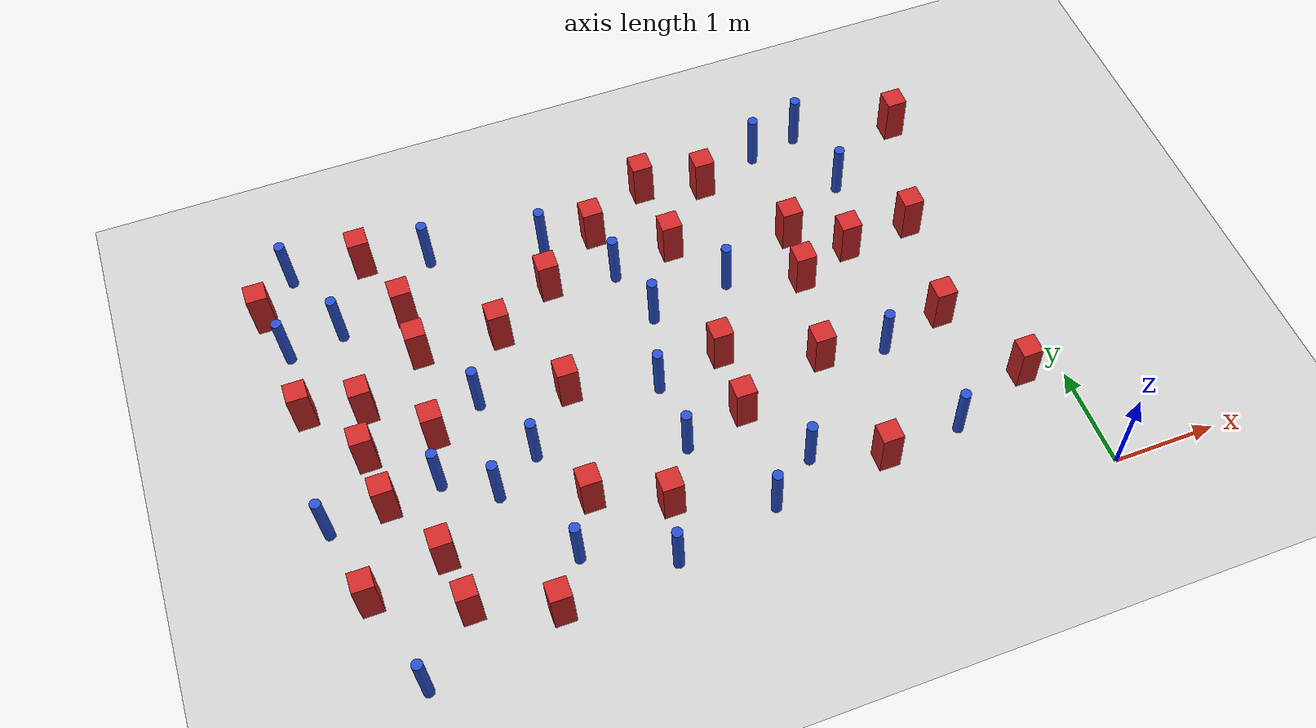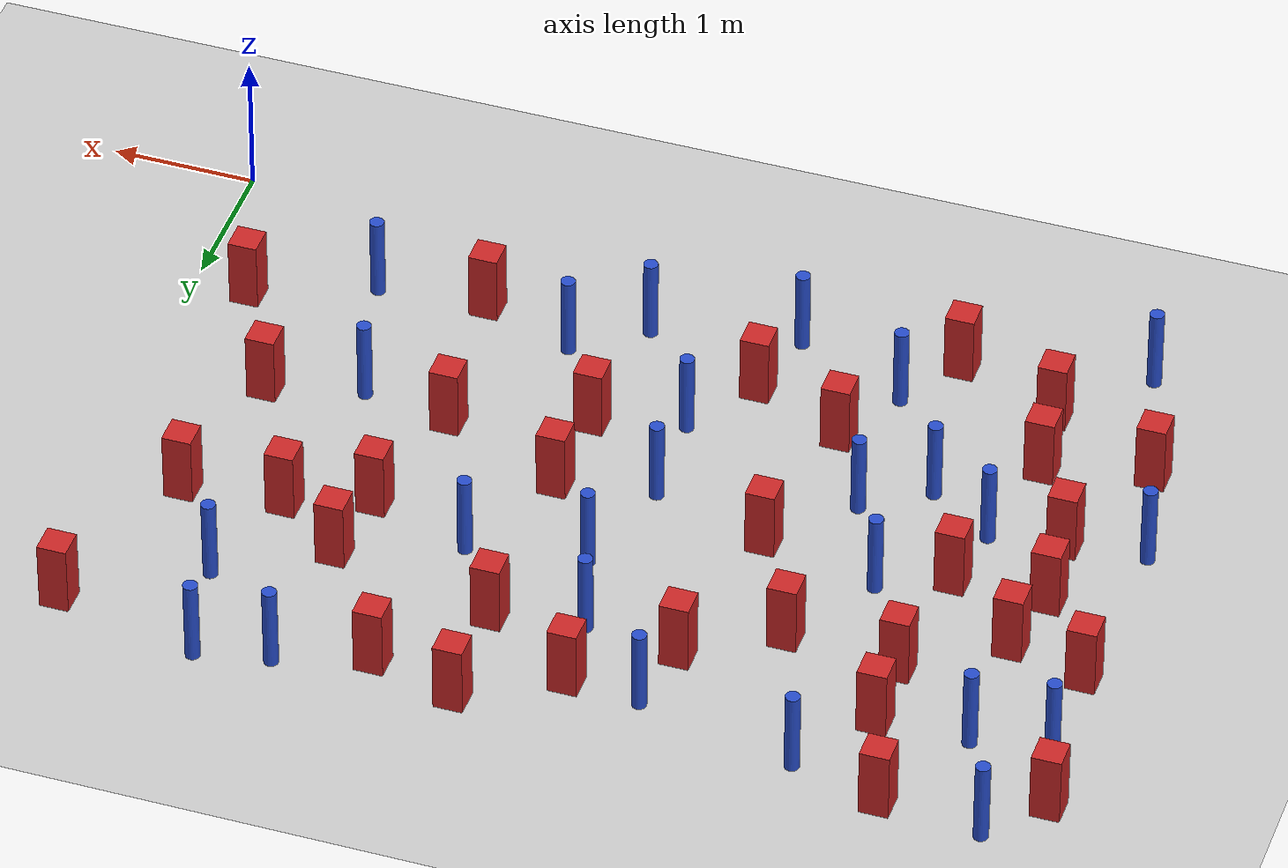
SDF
<sdf version="1.6">
 <world name="default">
  <model name="ground_plane">
   <static>1</static>
   <link name="link">
    <collision name="collision">
     <geometry><plane><normal>0 0 1</normal><size>100 100</size></plane></geometry>
     <surface><friction><ode><mu>100</mu><mu2>50</mu2></ode></friction></surface>
    </collision>
    <visual name="visual">
     <cast_shadows>0</cast_shadows>
     <geometry><plane><normal>0 0 1</normal><size>100 100</size></plane></geometry>
     <material>
      <ambient>1.0 1.0 1.0 1.0</ambient>
      <diffuse>0.8 0.8 0.8 1.0</diffuse>
      <specular>0.01 0.01 0.01 1.000000</specular>
     </material>
    </visual>
   </link>
  </model>
  <model name="pole_obstacle0">
   <static>true</static>
   <pose>-2.60340925272 0.994244192545 2.88873142074e-08 -9.90536689701e-09 4.60219948992e-07 -1.20965994959e-07</pose>
   <link name="link">
    <pose>0 0 0.3 0 -0 0</pose>
    <inertial>
     <mass>1</mass>
     <inertia><ixx>0.145833</ixx><ixy>0</ixy><ixz>0</ixz><iyy>0.145833</iyy><iyz>0</iyz><izz>0.125</izz></inertia>
    </inertial>
    <collision name="collision">
     <geometry><cylinder><radius>0.05</radius><length>.6</length></cylinder></geometry>
    </collision>
    <visual name="visual">
     <geometry><cylinder><radius>0.05</radius><length>.6</length></cylinder></geometry>
     <material>
      <script><name>Gazebo/Blue</name><uri>file://media/materials/scripts/gazebo.material</uri></script>
     </material>
    </visual>
   </link>
  </model>
  <model name="pole_obstacle3">
   <static>true</static>
   <pose>-3.62500078362 2.20097115959 2.88873142074e-08 -9.90536690232e-09 4.6021994898e-07 -1.20965994968e-07</pose>
   <link name="link">
    <pose>0 0 0.3 0 -0 0</pose>
    <inertial>
     <mass>1</mass>
     <inertia><ixx>0.145833</ixx><ixy>0</ixy><ixz>0</ixz><iyy>0.145833</iyy><iyz>0</iyz><izz>0.125</izz></inertia>
    </inertial>
    <collision name="collision">
     <geometry><cylinder><radius>0.05</radius><length>.6</length></cylinder></geometry>
    </collision>
    <visual name="visual">
     <geometry><cylinder><radius>0.05</radius><length>.6</length></cylinder></geometry>
     <material>
      <script><name>Gazebo/Blue</name><uri>file://media/materials/scripts/gazebo.material</uri></script>
     </material>
    </visual>
   </link>
  </model>
  <model name="square_post_obstacle14">
   <static>true</static>
   <pose>-6.7860666134 3.04604485807 8.22691968438e-08 7.2212513382e-06 -7.54495500217e-07 2.29674213826e-05</pose>
   <link name="link">
    <pose>0 0 0.25 0 -0 0</pose>
    <inertial>
     <mass>100</mass>
     <inertia>
      <ixx>0.166667</ixx>
      <ixy>0</ixy>
      <ixz>0</ixz>
      <iyy>0.166667</iyy>
      <iyz>0</iyz>
      <izz>0.166667</izz>
     </inertia>
    </inertial>
    <collision name="collision"><geometry><box><size>.2 .2 .5</size></box></geometry></collision>
    <visual name="visual">
     <geometry><box><size>.2 .2 .5</size></box></geometry>
     <material>
      <script><name>Gazebo/Red</name><uri>file://media/materials/scripts/gazebo.material</uri></script>
     </material>
    </visual>
   </link>
  </model>
  <model name="pole_obstacle10">
   <static>true</static>
   <pose>-5.34272363832 1.61929441346 2.88873142074e-08 -9.90536689445e-09 4.60219948999e-07 -1.20965994956e-07</pose>
   <link name="link">
    <pose>0 0 0.3 0 -0 0</pose>
    <inertial>
     <mass>1</mass>
     <inertia><ixx>0.145833</ixx><ixy>0</ixy><ixz>0</ixz><iyy>0.145833</iyy><iyz>0</iyz><izz>0.125</izz></inertia>
    </inertial>
    <collision name="collision">
     <geometry><cylinder><radius>0.05</radius><length>.6</length></cylinder></geometry>
    </collision>
    <visual name="visual">
     <geometry><cylinder><radius>0.05</radius><length>.6</length></cylinder></geometry>
     <material>
      <script><name>Gazebo/Blue</name><uri>file://media/materials/scripts/gazebo.material</uri></script>
     </material>
    </visual>
   </link>
  </model>
  <model name="square_post_obstacle21">
   <static>true</static>
   <pose>-0.835728895165 2.02179317641 8.22691968438e-08 7.2212513382e-06 -7.54495500217e-07 2.29674213826e-05</pose>
   <link name="link">
    <pose>0 0 0.25 0 -0 0</pose>
    <inertial>
     <mass>100</mass>
     <inertia>
      <ixx>0.166667</ixx>
      <ixy>0</ixy>
      <ixz>0</ixz>
      <iyy>0.166667</iyy>
      <iyz>0</iyz>
      <izz>0.166667</izz>
     </inertia>
    </inertial>
    <collision name="collision"><geometry><box><size>.2 .2 .5</size></box></geometry></collision>
    <visual name="visual">
     <geometry><box><size>.2 .2 .5</size></box></geometry>
     <material>
      <script><name>Gazebo/Red</name><uri>file://media/materials/scripts/gazebo.material</uri></script>
     </material>
    </visual>
   </link>
  </model>
  <model name="pole_obstacle20">
   <static>true</static>
   <pose>-1.79097347158 4.52578666777 2.88873142074e-08 -9.90536689852e-09 4.60219948989e-07 -1.2096599496e-07</pose>
   <link name="link">
    <pose>0 0 0.3 0 -0 0</pose>
    <inertial>
     <mass>1</mass>
     <inertia><ixx>0.145833</ixx><ixy>0</ixy><ixz>0</ixz><iyy>0.145833</iyy><iyz>0</iyz><izz>0.125</izz></inertia>
    </inertial>
    <collision name="collision">
     <geometry><cylinder><radius>0.05</radius><length>.6</length></cylinder></geometry>
    </collision>
    <visual name="visual">
     <geometry><cylinder><radius>0.05</radius><length>.6</length></cylinder></geometry>
     <material>
      <script><name>Gazebo/Blue</name><uri>file://media/materials/scripts/gazebo.material</uri></script>
     </material>
    </visual>
   </link>
  </model>
  <model name="square_post_obstacle31">
   <static>true</static>
   <pose>-5.87201184156 0.633304953575 8.22691968438e-08 7.2212513382e-06 -7.54495500217e-07 2.29674213826e-05</pose>
   <link name="link">
    <pose>0 0 0.25 0 -0 0</pose>
    <inertial>
     <mass>100</mass>
     <inertia>
      <ixx>0.166667</ixx>
      <ixy>0</ixy>
      <ixz>0</ixz>
      <iyy>0.166667</iyy>
      <iyz>0</iyz>
      <izz>0.166667</izz>
     </inertia>
    </inertial>
    <collision name="collision"><geometry><box><size>.2 .2 .5</size></box></geometry></collision>
    <visual name="visual">
     <geometry><box><size>.2 .2 .5</size></box></geometry>
     <material>
      <script><name>Gazebo/Red</name><uri>file://media/materials/scripts/gazebo.material</uri></script>
     </material>
    </visual>
   </link>
  </model>
  <model name="pole_obstacle22">
   <static>true</static>
   <pose>-4.06175415335 0.444013066375 2.88873142074e-08 -9.90536689981e-09 4.60219948986e-07 -1.20965994962e-07</pose>
   <link name="link">
    <pose>0 0 0.3 0 -0 0</pose>
    <inertial>
     <mass>1</mass>
     <inertia><ixx>0.145833</ixx><ixy>0</ixy><ixz>0</ixz><iyy>0.145833</iyy><iyz>0</iyz><izz>0.125</izz></inertia>
    </inertial>
    <collision name="collision">
     <geometry><cylinder><radius>0.05</radius><length>.6</length></cylinder></geometry>
    </collision>
    <visual name="visual">
     <geometry><cylinder><radius>0.05</radius><length>.6</length></cylinder></geometry>
     <material>
      <script><name>Gazebo/Blue</name><uri>file://media/materials/scripts/gazebo.material</uri></script>
     </material>
    </visual>
   </link>
  </model>
  <model name="pole_obstacle29">
   <static>true</static>
   <pose>-6.39486669541 0.0746615488944 2.88873142074e-08 -9.90536689222e-09 4.60219949004e-07 -1.20965994951e-07</pose>
   <link name="link">
    <pose>0 0 0.3 0 -0 0</pose>
    <inertial>
     <mass>1</mass>
     <inertia><ixx>0.145833</ixx><ixy>0</ixy><ixz>0</ixz><iyy>0.145833</iyy><iyz>0</iyz><izz>0.125</izz></inertia>
    </inertial>
    <collision name="collision">
     <geometry><cylinder><radius>0.05</radius><length>.6</length></cylinder></geometry>
    </collision>
    <visual name="visual">
     <geometry><cylinder><radius>0.05</radius><length>.6</length></cylinder></geometry>
     <material>
      <script><name>Gazebo/Blue</name><uri>file://media/materials/scripts/gazebo.material</uri></script>
     </material>
    </visual>
   </link>
  </model>
  <model name="square_post_obstacle35">
   <static>true</static>
   <pose>-3.65602229555 4.12133369663 8.22691968438e-08 7.2212513382e-06 -7.54495500217e-07 2.29674213826e-05</pose>
   <link name="link">
    <pose>0 0 0.25 0 -0 0</pose>
    <inertial>
     <mass>100</mass>
     <inertia>
      <ixx>0.166667</ixx>
      <ixy>0</ixy>
      <ixz>0</ixz>
      <iyy>0.166667</iyy>
      <iyz>0</iyz>
      <izz>0.166667</izz>
     </inertia>
    </inertial>
    <collision name="collision"><geometry><box><size>.2 .2 .5</size></box></geometry></collision>
    <visual name="visual">
     <geometry><box><size>.2 .2 .5</size></box></geometry>
     <material>
      <script><name>Gazebo/Red</name><uri>file://media/materials/scripts/gazebo.material</uri></script>
     </material>
    </visual>
   </link>
  </model>
  <model name="square_post_obstacle38">
   <static>true</static>
   <pose>-0.285716844559 4.3962112451 8.22691968438e-08 7.2212513382e-06 -7.54495500217e-07 2.29674213826e-05</pose>
   <link name="link">
    <pose>0 0 0.25 0 -0 0</pose>
    <inertial>
     <mass>100</mass>
     <inertia>
      <ixx>0.166667</ixx>
      <ixy>0</ixy>
      <ixz>0</ixz>
      <iyy>0.166667</iyy>
      <iyz>0</iyz>
      <izz>0.166667</izz>
     </inertia>
    </inertial>
    <collision name="collision"><geometry><box><size>.2 .2 .5</size></box></geometry></collision>
    <visual name="visual">
     <geometry><box><size>.2 .2 .5</size></box></geometry>
     <material>
      <script><name>Gazebo/Red</name><uri>file://media/materials/scripts/gazebo.material</uri></script>
     </material>
    </visual>
   </link>
  </model>
  <model name="square_post_obstacle39">
   <static>true</static>
   <pose>-4.25296908652 3.6552107047 8.22691968438e-08 7.2212513382e-06 -7.54495500217e-07 2.29674213826e-05</pose>
   <link name="link">
    <pose>0 0 0.25 0 -0 0</pose>
    <inertial>
     <mass>100</mass>
     <inertia>
      <ixx>0.166667</ixx>
      <ixy>0</ixy>
      <ixz>0</ixz>
      <iyy>0.166667</iyy>
      <iyz>0</iyz>
      <izz>0.166667</izz>
     </inertia>
    </inertial>
    <collision name="collision"><geometry><box><size>.2 .2 .5</size></box></geometry></collision>
    <visual name="visual">
     <geometry><box><size>.2 .2 .5</size></box></geometry>
     <material>
      <script><name>Gazebo/Red</name><uri>file://media/materials/scripts/gazebo.material</uri></script>
     </material>
    </visual>
   </link>
  </model>
  <model name="pole_obstacle40">
   <static>true</static>
   <pose>-2.61356018661 3.10762073044 2.88873142074e-08 -9.90536690232e-09 4.6021994898e-07 -1.20965994968e-07</pose>
   <link name="link">
    <pose>0 0 0.3 0 -0 0</pose>
    <inertial>
     <mass>1</mass>
     <inertia><ixx>0.145833</ixx><ixy>0</ixy><ixz>0</ixz><iyy>0.145833</iyy><iyz>0</iyz><izz>0.125</izz></inertia>
    </inertial>
    <collision name="collision">
     <geometry><cylinder><radius>0.05</radius><length>.6</length></cylinder></geometry>
    </collision>
    <visual name="visual">
     <geometry><cylinder><radius>0.05</radius><length>.6</length></cylinder></geometry>
     <material>
      <script><name>Gazebo/Blue</name><uri>file://media/materials/scripts/gazebo.material</uri></script>
     </material>
    </visual>
   </link>
  </model>
  <model name="square_post_obstacle42">
   <static>true</static>
   <pose>-6.65838526368 1.01261114527 8.22691968438e-08 7.2212513382e-06 -7.54495500217e-07 2.29674213826e-05</pose>
   <link name="link">
    <pose>0 0 0.25 0 -0 0</pose>
    <inertial>
     <mass>100</mass>
     <inertia>
      <ixx>0.166667</ixx>
      <ixy>0</ixy>
      <ixz>0</ixz>
      <iyy>0.166667</iyy>
      <iyz>0</iyz>
      <izz>0.166667</izz>
     </inertia>
    </inertial>
    <collision name="collision"><geometry><box><size>.2 .2 .5</size></box></geometry></collision>
    <visual name="visual">
     <geometry><box><size>.2 .2 .5</size></box></geometry>
     <material>
      <script><name>Gazebo/Red</name><uri>file://media/materials/scripts/gazebo.material</uri></script>
     </material>
    </visual>
   </link>
  </model>
  <model name="pole_obstacle47">
   <static>true</static>
   <pose>-6.58316703163 4.63881542568 2.88873142074e-08 -9.90536690842e-09 4.60219948965e-07 -1.20965994976e-07</pose>
   <link name="link">
    <pose>0 0 0.3 0 -0 0</pose>
    <inertial>
     <mass>1</mass>
     <inertia><ixx>0.145833</ixx><ixy>0</ixy><ixz>0</ixz><iyy>0.145833</iyy><iyz>0</iyz><izz>0.125</izz></inertia>
    </inertial>
    <collision name="collision">
     <geometry><cylinder><radius>0.05</radius><length>.6</length></cylinder></geometry>
    </collision>
    <visual name="visual">
     <geometry><cylinder><radius>0.05</radius><length>.6</length></cylinder></geometry>
     <material>
      <script><name>Gazebo/Blue</name><uri>file://media/materials/scripts/gazebo.material</uri></script>
     </material>
    </visual>
   </link>
  </model>
  <model name="square_post_obstacle55">
   <static>true</static>
   <pose>-3.93323044225 0.995874588349 8.22691968438e-08 7.2212513382e-06 -7.54495500217e-07 2.29674213826e-05</pose>
   <link name="link">
    <pose>0 0 0.25 0 -0 0</pose>
    <inertial>
     <mass>100</mass>
     <inertia>
      <ixx>0.166667</ixx>
      <ixy>0</ixy>
      <ixz>0</ixz>
      <iyy>0.166667</iyy>
      <iyz>0</iyz>
      <izz>0.166667</izz>
     </inertia>
    </inertial>
    <collision name="collision"><geometry><box><size>.2 .2 .5</size></box></geometry></collision>
    <visual name="visual">
     <geometry><box><size>.2 .2 .5</size></box></geometry>
     <material>
      <script><name>Gazebo/Red</name><uri>file://media/materials/scripts/gazebo.material</uri></script>
     </material>
    </visual>
   </link>
  </model>
  <model name="pole_obstacle52">
   <static>true</static>
   <pose>-5.25927893948 4.40153513606 2.88873142074e-08 -9.90536690842e-09 4.60219948965e-07 -1.20965994976e-07</pose>
   <link name="link">
    <pose>0 0 0.3 0 -0 0</pose>
    <inertial>
     <mass>1</mass>
     <inertia><ixx>0.145833</ixx><ixy>0</ixy><ixz>0</ixz><iyy>0.145833</iyy><iyz>0</iyz><izz>0.125</izz></inertia>
    </inertial>
    <collision name="collision">
     <geometry><cylinder><radius>0.05</radius><length>.6</length></cylinder></geometry>
    </collision>
    <visual name="visual">
     <geometry><cylinder><radius>0.05</radius><length>.6</length></cylinder></geometry>
     <material>
      <script><name>Gazebo/Blue</name><uri>file://media/materials/scripts/gazebo.material</uri></script>
     </material>
    </visual>
   </link>
  </model>
  <model name="pole_obstacle56">
   <static>true</static>
   <pose>-4.91317525555 1.90789537212 2.88873142074e-08 -9.90536689445e-09 4.60219948999e-07 -1.20965994956e-07</pose>
   <link name="link">
    <pose>0 0 0.3 0 -0 0</pose>
    <inertial>
     <mass>1</mass>
     <inertia><ixx>0.145833</ixx><ixy>0</ixy><ixz>0</ixz><iyy>0.145833</iyy><iyz>0</iyz><izz>0.125</izz></inertia>
    </inertial>
    <collision name="collision">
     <geometry><cylinder><radius>0.05</radius><length>.6</length></cylinder></geometry>
    </collision>
    <visual name="visual">
     <geometry><cylinder><radius>0.05</radius><length>.6</length></cylinder></geometry>
     <material>
      <script><name>Gazebo/Blue</name><uri>file://media/materials/scripts/gazebo.material</uri></script>
     </material>
    </visual>
   </link>
  </model>
  <model name="square_post_obstacle65">
   <static>true</static>
   <pose>-5.1479095921 0.347851052922 8.22691968438e-08 7.2212513382e-06 -7.54495500217e-07 2.29674213826e-05</pose>
   <link name="link">
    <pose>0 0 0.25 0 -0 0</pose>
    <inertial>
     <mass>100</mass>
     <inertia>
      <ixx>0.166667</ixx>
      <ixy>0</ixy>
      <ixz>0</ixz>
      <iyy>0.166667</iyy>
      <iyz>0</iyz>
      <izz>0.166667</izz>
     </inertia>
    </inertial>
    <collision name="collision"><geometry><box><size>.2 .2 .5</size></box></geometry></collision>
    <visual name="visual">
     <geometry><box><size>.2 .2 .5</size></box></geometry>
     <material>
      <script><name>Gazebo/Red</name><uri>file://media/materials/scripts/gazebo.material</uri></script>
     </material>
    </visual>
   </link>
  </model>
  <model name="square_post_obstacle80">
   <static>true</static>
   <pose>-1.95469268471 0.761956556208 8.22691968438e-08 7.2212513382e-06 -7.54495500217e-07 2.29674213826e-05</pose>
   <link name="link">
    <pose>0 0 0.25 0 -0 0</pose>
    <inertial>
     <mass>100</mass>
     <inertia>
      <ixx>0.166667</ixx>
      <ixy>0</ixy>
      <ixz>0</ixz>
      <iyy>0.166667</iyy>
      <iyz>0</iyz>
      <izz>0.166667</izz>
     </inertia>
    </inertial>
    <collision name="collision"><geometry><box><size>.2 .2 .5</size></box></geometry></collision>
    <visual name="visual">
     <geometry><box><size>.2 .2 .5</size></box></geometry>
     <material>
      <script><name>Gazebo/Red</name><uri>file://media/materials/scripts/gazebo.material</uri></script>
     </material>
    </visual>
   </link>
  </model>
  <model name="pole_obstacle96">
   <static>true</static>
   <pose>-5.25080104474 2.6191359312 2.88873142074e-08 -9.90536690245e-09 4.6021994898e-07 -1.20965994966e-07</pose>
   <link name="link">
    <pose>0 0 0.3 0 -0 0</pose>
    <inertial>
     <mass>1</mass>
     <inertia><ixx>0.145833</ixx><ixy>0</ixy><ixz>0</ixz><iyy>0.145833</iyy><iyz>0</iyz><izz>0.125</izz></inertia>
    </inertial>
    <collision name="collision">
     <geometry><cylinder><radius>0.05</radius><length>.6</length></cylinder></geometry>
    </collision>
    <visual name="visual">
     <geometry><cylinder><radius>0.05</radius><length>.6</length></cylinder></geometry>
     <material>
      <script><name>Gazebo/Blue</name><uri>file://media/materials/scripts/gazebo.material</uri></script>
     </material>
    </visual>
   </link>
  </model>
  <model name="square_post_obstacle90">
   <static>true</static>
   <pose>-2.09744206645 1.95798275049 8.22691968438e-08 7.2212513382e-06 -7.54495500217e-07 2.29674213826e-05</pose>
   <link name="link">
    <pose>0 0 0.25 0 -0 0</pose>
    <inertial>
     <mass>100</mass>
     <inertia>
      <ixx>0.166667</ixx>
      <ixy>0</ixy>
      <ixz>0</ixz>
      <iyy>0.166667</iyy>
      <iyz>0</iyz>
      <izz>0.166667</izz>
     </inertia>
    </inertial>
    <collision name="collision"><geometry><box><size>.2 .2 .5</size></box></geometry></collision>
    <visual name="visual">
     <geometry><box><size>.2 .2 .5</size></box></geometry>
     <material>
      <script><name>Gazebo/Red</name><uri>file://media/materials/scripts/gazebo.material</uri></script>
     </material>
    </visual>
   </link>
  </model>
  <model name="pole_obstacle103">
   <static>true</static>
   <pose>-4.85498222592 0.792165620245 2.88873142074e-08 -9.90536689837e-09 4.60219948989e-07 -1.2096599496e-07</pose>
   <link name="link">
    <pose>0 0 0.3 0 -0 0</pose>
    <inertial>
     <mass>1</mass>
     <inertia><ixx>0.145833</ixx><ixy>0</ixy><ixz>0</ixz><iyy>0.145833</iyy><iyz>0</iyz><izz>0.125</izz></inertia>
    </inertial>
    <collision name="collision">
     <geometry><cylinder><radius>0.05</radius><length>.6</length></cylinder></geometry>
    </collision>
    <visual name="visual">
     <geometry><cylinder><radius>0.05</radius><length>.6</length></cylinder></geometry>
     <material>
      <script><name>Gazebo/Blue</name><uri>file://media/materials/scripts/gazebo.material</uri></script>
     </material>
    </visual>
   </link>
  </model>
  <model name="pole_obstacle107">
   <static>true</static>
   <pose>-1.2919113772 4.62738854577 2.88873142074e-08 -9.90536689852e-09 4.60219948989e-07 -1.2096599496e-07</pose>
   <link name="link">
    <pose>0 0 0.3 0 -0 0</pose>
    <inertial>
     <mass>1</mass>
     <inertia><ixx>0.145833</ixx><ixy>0</ixy><ixz>0</ixz><iyy>0.145833</iyy><iyz>0</iyz><izz>0.125</izz></inertia>
    </inertial>
    <collision name="collision">
     <geometry><cylinder><radius>0.05</radius><length>.6</length></cylinder></geometry>
    </collision>
    <visual name="visual">
     <geometry><cylinder><radius>0.05</radius><length>.6</length></cylinder></geometry>
     <material>
      <script><name>Gazebo/Blue</name><uri>file://media/materials/scripts/gazebo.material</uri></script>
     </material>
    </visual>
   </link>
  </model>
  <model name="square_post_obstacle96">
   <static>true</static>
   <pose>-6.35853561531 2.4029784489 8.22691968438e-08 7.2212513382e-06 -7.54495500217e-07 2.29674213826e-05</pose>
   <link name="link">
    <pose>0 0 0.25 0 -0 0</pose>
    <inertial>
     <mass>100</mass>
     <inertia>
      <ixx>0.166667</ixx>
      <ixy>0</ixy>
      <ixz>0</ixz>
      <iyy>0.166667</iyy>
      <iyz>0</iyz>
      <izz>0.166667</izz>
     </inertia>
    </inertial>
    <collision name="collision"><geometry><box><size>.2 .2 .5</size></box></geometry></collision>
    <visual name="visual">
     <geometry><box><size>.2 .2 .5</size></box></geometry>
     <material>
      <script><name>Gazebo/Red</name><uri>file://media/materials/scripts/gazebo.material</uri></script>
     </material>
    </visual>
   </link>
  </model>
  <model name="pole_obstacle113">
   <static>true</static>
   <pose>-1.47502626442 1.85555112962 2.88873142074e-08 -9.90536689672e-09 4.60219948993e-07 -1.20965994959e-07</pose>
   <link name="link">
    <pose>0 0 0.3 0 -0 0</pose>
    <inertial>
     <mass>1</mass>
     <inertia><ixx>0.145833</ixx><ixy>0</ixy><ixz>0</ixz><iyy>0.145833</iyy><iyz>0</iyz><izz>0.125</izz></inertia>
    </inertial>
    <collision name="collision">
     <geometry><cylinder><radius>0.05</radius><length>.6</length></cylinder></geometry>
    </collision>
    <visual name="visual">
     <geometry><cylinder><radius>0.05</radius><length>.6</length></cylinder></geometry>
     <material>
      <script><name>Gazebo/Blue</name><uri>file://media/materials/scripts/gazebo.material</uri></script>
     </material>
    </visual>
   </link>
  </model>
  <model name="pole_obstacle116">
   <static>true</static>
   <pose>-3.59956804571 3.57866576461 2.88873142074e-08 -9.90536690232e-09 4.6021994898e-07 -1.20965994968e-07</pose>
   <link name="link">
    <pose>0 0 0.3 0 -0 0</pose>
    <inertial>
     <mass>1</mass>
     <inertia><ixx>0.145833</ixx><ixy>0</ixy><ixz>0</ixz><iyy>0.145833</iyy><iyz>0</iyz><izz>0.125</izz></inertia>
    </inertial>
    <collision name="collision">
     <geometry><cylinder><radius>0.05</radius><length>.6</length></cylinder></geometry>
    </collision>
    <visual name="visual">
     <geometry><cylinder><radius>0.05</radius><length>.6</length></cylinder></geometry>
     <material>
      <script><name>Gazebo/Blue</name><uri>file://media/materials/scripts/gazebo.material</uri></script>
     </material>
    </visual>
   </link>
  </model>
  <model name="square_post_obstacle105">
   <static>true</static>
   <pose>-4.58642199558 1.29209107574 8.22691968438e-08 7.2212513382e-06 -7.54495500217e-07 2.29674213826e-05</pose>
   <link name="link">
    <pose>0 0 0.25 0 -0 0</pose>
    <inertial>
     <mass>100</mass>
     <inertia>
      <ixx>0.166667</ixx>
      <ixy>0</ixy>
      <ixz>0</ixz>
      <iyy>0.166667</iyy>
      <iyz>0</iyz>
      <izz>0.166667</izz>
     </inertia>
    </inertial>
    <collision name="collision"><geometry><box><size>.2 .2 .5</size></box></geometry></collision>
    <visual name="visual">
     <geometry><box><size>.2 .2 .5</size></box></geometry>
     <material>
      <script><name>Gazebo/Red</name><uri>file://media/materials/scripts/gazebo.material</uri></script>
     </material>
    </visual>
   </link>
  </model>
  <model name="pole_obstacle120">
   <static>true</static>
   <pose>-4.15807709004 4.15984010015 2.88873142074e-08 -9.90536690842e-09 4.60219948965e-07 -1.20965994976e-07</pose>
   <link name="link">
    <pose>0 0 0.3 0 -0 0</pose>
    <inertial>
     <mass>1</mass>
     <inertia><ixx>0.145833</ixx><ixy>0</ixy><ixz>0</ixz><iyy>0.145833</iyy><iyz>0</iyz><izz>0.125</izz></inertia>
    </inertial>
    <collision name="collision">
     <geometry><cylinder><radius>0.05</radius><length>.6</length></cylinder></geometry>
    </collision>
    <visual name="visual">
     <geometry><cylinder><radius>0.05</radius><length>.6</length></cylinder></geometry>
     <material>
      <script><name>Gazebo/Blue</name><uri>file://media/materials/scripts/gazebo.material</uri></script>
     </material>
    </visual>
   </link>
  </model>
  <model name="pole_obstacle124">
   <static>true</static>
   <pose>-1.12741566007 3.8562525784 2.88873142074e-08 -9.90536689791e-09 4.6021994899e-07 -1.20965994959e-07</pose>
   <link name="link">
    <pose>0 0 0.3 0 -0 0</pose>
    <inertial>
     <mass>1</mass>
     <inertia><ixx>0.145833</ixx><ixy>0</ixy><ixz>0</ixz><iyy>0.145833</iyy><iyz>0</iyz><izz>0.125</izz></inertia>
    </inertial>
    <collision name="collision">
     <geometry><cylinder><radius>0.05</radius><length>.6</length></cylinder></geometry>
    </collision>
    <visual name="visual">
     <geometry><cylinder><radius>0.05</radius><length>.6</length></cylinder></geometry>
     <material>
      <script><name>Gazebo/Blue</name><uri>file://media/materials/scripts/gazebo.material</uri></script>
     </material>
    </visual>
   </link>
  </model>
  <model name="pole_obstacle138">
   <static>true</static>
   <pose>-6.84712329264 1.79003808385 2.88873142074e-08 -9.90536689445e-09 4.60219948999e-07 -1.20965994956e-07</pose>
   <link name="link">
    <pose>0 0 0.3 0 -0 0</pose>
    <inertial>
     <mass>1</mass>
     <inertia><ixx>0.145833</ixx><ixy>0</ixy><ixz>0</ixz><iyy>0.145833</iyy><iyz>0</iyz><izz>0.125</izz></inertia>
    </inertial>
    <collision name="collision">
     <geometry><cylinder><radius>0.05</radius><length>.6</length></cylinder></geometry>
    </collision>
    <visual name="visual">
     <geometry><cylinder><radius>0.05</radius><length>.6</length></cylinder></geometry>
     <material>
      <script><name>Gazebo/Blue</name><uri>file://media/materials/scripts/gazebo.material</uri></script>
     </material>
    </visual>
   </link>
  </model>
  <model name="pole_obstacle141">
   <static>true</static>
   <pose>-1.19614762888 0.819664989687 2.88873142074e-08 -9.90536689692e-09 4.60219948993e-07 -1.20965994958e-07</pose>
   <link name="link">
    <pose>0 0 0.3 0 -0 0</pose>
    <inertial>
     <mass>1</mass>
     <inertia><ixx>0.145833</ixx><ixy>0</ixy><ixz>0</ixz><iyy>0.145833</iyy><iyz>0</iyz><izz>0.125</izz></inertia>
    </inertial>
    <collision name="collision">
     <geometry><cylinder><radius>0.05</radius><length>.6</length></cylinder></geometry>
    </collision>
    <visual name="visual">
     <geometry><cylinder><radius>0.05</radius><length>.6</length></cylinder></geometry>
     <material>
      <script><name>Gazebo/Blue</name><uri>file://media/materials/scripts/gazebo.material</uri></script>
     </material>
    </visual>
   </link>
  </model>
  <model name="square_post_obstacle135">
   <static>true</static>
   <pose>-2.41663779811 4.33202581437 8.22691968438e-08 7.2212513382e-06 -7.54495500217e-07 2.29674213826e-05</pose>
   <link name="link">
    <pose>0 0 0.25 0 -0 0</pose>
    <inertial>
     <mass>100</mass>
     <inertia>
      <ixx>0.166667</ixx>
      <ixy>0</ixy>
      <ixz>0</ixz>
      <iyy>0.166667</iyy>
      <iyz>0</iyz>
      <izz>0.166667</izz>
     </inertia>
    </inertial>
    <collision name="collision"><geometry><box><size>.2 .2 .5</size></box></geometry></collision>
    <visual name="visual">
     <geometry><box><size>.2 .2 .5</size></box></geometry>
     <material>
      <script><name>Gazebo/Red</name><uri>file://media/materials/scripts/gazebo.material</uri></script>
     </material>
    </visual>
   </link>
  </model>
  <model name="pole_obstacle147">
   <static>true</static>
   <pose>-6.26369027414 3.83638618991 2.88873142074e-08 -9.90536690245e-09 4.6021994898e-07 -1.20965994966e-07</pose>
   <link name="link">
    <pose>0 0 0.3 0 -0 0</pose>
    <inertial>
     <mass>1</mass>
     <inertia><ixx>0.145833</ixx><ixy>0</ixy><ixz>0</ixz><iyy>0.145833</iyy><iyz>0</iyz><izz>0.125</izz></inertia>
    </inertial>
    <collision name="collision">
     <geometry><cylinder><radius>0.05</radius><length>.6</length></cylinder></geometry>
    </collision>
    <visual name="visual">
     <geometry><cylinder><radius>0.05</radius><length>.6</length></cylinder></geometry>
     <material>
      <script><name>Gazebo/Blue</name><uri>file://media/materials/scripts/gazebo.material</uri></script>
     </material>
    </visual>
   </link>
  </model>
  <model name="square_post_obstacle146">
   <static>true</static>
   <pose>-5.63928715354 3.84920971347 8.22691968438e-08 7.2212513382e-06 -7.54495500217e-07 2.29674213826e-05</pose>
   <link name="link">
    <pose>0 0 0.25 0 -0 0</pose>
    <inertial>
     <mass>100</mass>
     <inertia>
      <ixx>0.166667</ixx>
      <ixy>0</ixy>
      <ixz>0</ixz>
      <iyy>0.166667</iyy>
      <iyz>0</iyz>
      <izz>0.166667</izz>
     </inertia>
    </inertial>
    <collision name="collision"><geometry><box><size>.2 .2 .5</size></box></geometry></collision>
    <visual name="visual">
     <geometry><box><size>.2 .2 .5</size></box></geometry>
     <material>
      <script><name>Gazebo/Red</name><uri>file://media/materials/scripts/gazebo.material</uri></script>
     </material>
    </visual>
   </link>
  </model>
  <model name="square_post_obstacle150">
   <static>true</static>
   <pose>-4.43890708121 2.4413787644 8.22691968438e-08 7.2212513382e-06 -7.54495500217e-07 2.29674213826e-05</pose>
   <link name="link">
    <pose>0 0 0.25 0 -0 0</pose>
    <inertial>
     <mass>100</mass>
     <inertia>
      <ixx>0.166667</ixx>
      <ixy>0</ixy>
      <ixz>0</ixz>
      <iyy>0.166667</iyy>
      <iyz>0</iyz>
      <izz>0.166667</izz>
     </inertia>
    </inertial>
    <collision name="collision"><geometry><box><size>.2 .2 .5</size></box></geometry></collision>
    <visual name="visual">
     <geometry><box><size>.2 .2 .5</size></box></geometry>
     <material>
      <script><name>Gazebo/Red</name><uri>file://media/materials/scripts/gazebo.material</uri></script>
     </material>
    </visual>
   </link>
  </model>
  <model name="pole_obstacle159">
   <static>true</static>
   <pose>-3.06681810382 0.651021642171 2.88873142074e-08 -9.90536689285e-09 4.60219949002e-07 -1.20965994953e-07</pose>
   <link name="link">
    <pose>0 0 0.3 0 -0 0</pose>
    <inertial>
     <mass>1</mass>
     <inertia><ixx>0.145833</ixx><ixy>0</ixy><ixz>0</ixz><iyy>0.145833</iyy><iyz>0</iyz><izz>0.125</izz></inertia>
    </inertial>
    <collision name="collision">
     <geometry><cylinder><radius>0.05</radius><length>.6</length></cylinder></geometry>
    </collision>
    <visual name="visual">
     <geometry><cylinder><radius>0.05</radius><length>.6</length></cylinder></geometry>
     <material>
      <script><name>Gazebo/Blue</name><uri>file://media/materials/scripts/gazebo.material</uri></script>
     </material>
    </visual>
   </link>
  </model>
  <model name="square_post_obstacle159">
   <static>true</static>
   <pose>-0.668518752391 3.1345330302 8.22691968438e-08 7.2212513382e-06 -7.54495500217e-07 2.29674213826e-05</pose>
   <link name="link">
    <pose>0 0 0.25 0 -0 0</pose>
    <inertial>
     <mass>100</mass>
     <inertia>
      <ixx>0.166667</ixx>
      <ixy>0</ixy>
      <ixz>0</ixz>
      <iyy>0.166667</iyy>
      <iyz>0</iyz>
      <izz>0.166667</izz>
     </inertia>
    </inertial>
    <collision name="collision"><geometry><box><size>.2 .2 .5</size></box></geometry></collision>
    <visual name="visual">
     <geometry><box><size>.2 .2 .5</size></box></geometry>
     <material>
      <script><name>Gazebo/Red</name><uri>file://media/materials/scripts/gazebo.material</uri></script>
     </material>
    </visual>
   </link>
  </model>
  <model name="square_post_obstacle162">
   <static>true</static>
   <pose>-5.8816533179 4.56982099787 8.22691968438e-08 7.2212513382e-06 -7.54495500217e-07 2.29674213826e-05</pose>
   <link name="link">
    <pose>0 0 0.25 0 -0 0</pose>
    <inertial>
     <mass>100</mass>
     <inertia>
      <ixx>0.166667</ixx>
      <ixy>0</ixy>
      <ixz>0</ixz>
      <iyy>0.166667</iyy>
      <iyz>0</iyz>
      <izz>0.166667</izz>
     </inertia>
    </inertial>
    <collision name="collision"><geometry><box><size>.2 .2 .5</size></box></geometry></collision>
    <visual name="visual">
     <geometry><box><size>.2 .2 .5</size></box></geometry>
     <material>
      <script><name>Gazebo/Red</name><uri>file://media/materials/scripts/gazebo.material</uri></script>
     </material>
    </visual>
   </link>
  </model>
  <model name="pole_obstacle172">
   <static>true</static>
   <pose>-3.41081197511 2.97020568949 2.88873142074e-08 -9.90536690232e-09 4.6021994898e-07 -1.20965994968e-07</pose>
   <link name="link">
    <pose>0 0 0.3 0 -0 0</pose>
    <inertial>
     <mass>1</mass>
     <inertia><ixx>0.145833</ixx><ixy>0</ixy><ixz>0</ixz><iyy>0.145833</iyy><iyz>0</iyz><izz>0.125</izz></inertia>
    </inertial>
    <collision name="collision">
     <geometry><cylinder><radius>0.05</radius><length>.6</length></cylinder></geometry>
    </collision>
    <visual name="visual">
     <geometry><cylinder><radius>0.05</radius><length>.6</length></cylinder></geometry>
     <material>
      <script><name>Gazebo/Blue</name><uri>file://media/materials/scripts/gazebo.material</uri></script>
     </material>
    </visual>
   </link>
  </model>
  <model name="pole_obstacle174">
   <static>true</static>
   <pose>-6.78787996911 3.75891777332 2.88873142074e-08 -9.90536690245e-09 4.6021994898e-07 -1.20965994966e-07</pose>
   <link name="link">
    <pose>0 0 0.3 0 -0 0</pose>
    <inertial>
     <mass>1</mass>
     <inertia><ixx>0.145833</ixx><ixy>0</ixy><ixz>0</ixz><iyy>0.145833</iyy><iyz>0</iyz><izz>0.125</izz></inertia>
    </inertial>
    <collision name="collision">
     <geometry><cylinder><radius>0.05</radius><length>.6</length></cylinder></geometry>
    </collision>
    <visual name="visual">
     <geometry><cylinder><radius>0.05</radius><length>.6</length></cylinder></geometry>
     <material>
      <script><name>Gazebo/Blue</name><uri>file://media/materials/scripts/gazebo.material</uri></script>
     </material>
    </visual>
   </link>
  </model>
  <model name="square_post_obstacle170">
   <static>true</static>
   <pose>-2.98837901475 3.69142406228 8.22691968438e-08 7.2212513382e-06 -7.54495500217e-07 2.29674213826e-05</pose>
   <link name="link">
    <pose>0 0 0.25 0 -0 0</pose>
    <inertial>
     <mass>100</mass>
     <inertia>
      <ixx>0.166667</ixx>
      <ixy>0</ixy>
      <ixz>0</ixz>
      <iyy>0.166667</iyy>
      <iyz>0</iyz>
      <izz>0.166667</izz>
     </inertia>
    </inertial>
    <collision name="collision"><geometry><box><size>.2 .2 .5</size></box></geometry></collision>
    <visual name="visual">
     <geometry><box><size>.2 .2 .5</size></box></geometry>
     <material>
      <script><name>Gazebo/Red</name><uri>file://media/materials/scripts/gazebo.material</uri></script>
     </material>
    </visual>
   </link>
  </model>
  <model name="square_post_obstacle174">
   <static>true</static>
   <pose>-6.25472276261 2.9020857944 8.22691968438e-08 7.2212513382e-06 -7.54495500217e-07 2.29674213826e-05</pose>
   <link name="link">
    <pose>0 0 0.25 0 -0 0</pose>
    <inertial>
     <mass>100</mass>
     <inertia>
      <ixx>0.166667</ixx>
      <ixy>0</ixy>
      <ixz>0</ixz>
      <iyy>0.166667</iyy>
      <iyz>0</iyz>
      <izz>0.166667</izz>
     </inertia>
    </inertial>
    <collision name="collision"><geometry><box><size>.2 .2 .5</size></box></geometry></collision>
    <visual name="visual">
     <geometry><box><size>.2 .2 .5</size></box></geometry>
     <material>
      <script><name>Gazebo/Red</name><uri>file://media/materials/scripts/gazebo.material</uri></script>
     </material>
    </visual>
   </link>
  </model>
  <model name="square_post_obstacle182">
   <static>true</static>
   <pose>-2.99653908931 1.65893987363 8.22691968438e-08 7.2212513382e-06 -7.54495500217e-07 2.29674213826e-05</pose>
   <link name="link">
    <pose>0 0 0.25 0 -0 0</pose>
    <inertial>
     <mass>100</mass>
     <inertia>
      <ixx>0.166667</ixx>
      <ixy>0</ixy>
      <ixz>0</ixz>
      <iyy>0.166667</iyy>
      <iyz>0</iyz>
      <izz>0.166667</izz>
     </inertia>
    </inertial>
    <collision name="collision"><geometry><box><size>.2 .2 .5</size></box></geometry></collision>
    <visual name="visual">
     <geometry><box><size>.2 .2 .5</size></box></geometry>
     <material>
      <script><name>Gazebo/Red</name><uri>file://media/materials/scripts/gazebo.material</uri></script>
     </material>
    </visual>
   </link>
  </model>
  <model name="square_post_obstacle197">
   <static>true</static>
   <pose>-2.96882421078 2.33131821435 8.22691968438e-08 7.2212513382e-06 -7.54495500217e-07 2.29674213826e-05</pose>
   <link name="link">
    <pose>0 0 0.25 0 -0 0</pose>
    <inertial>
     <mass>100</mass>
     <inertia>
      <ixx>0.166667</ixx>
      <ixy>0</ixy>
      <ixz>0</ixz>
      <iyy>0.166667</iyy>
      <iyz>0</iyz>
      <izz>0.166667</izz>
     </inertia>
    </inertial>
    <collision name="collision"><geometry><box><size>.2 .2 .5</size></box></geometry></collision>
    <visual name="visual">
     <geometry><box><size>.2 .2 .5</size></box></geometry>
     <material>
      <script><name>Gazebo/Red</name><uri>file://media/materials/scripts/gazebo.material</uri></script>
     </material>
    </visual>
   </link>
  </model>
  <model name="square_post_obstacle200">
   <static>true</static>
   <pose>-3.01570853985 4.49839794382 8.22691968438e-08 7.2212513382e-06 -7.54495500217e-07 2.29674213826e-05</pose>
   <link name="link">
    <pose>0 0 0.25 0 -0 0</pose>
    <inertial>
     <mass>100</mass>
     <inertia>
      <ixx>0.166667</ixx>
      <ixy>0</ixy>
      <ixz>0</ixz>
      <iyy>0.166667</iyy>
      <iyz>0</iyz>
      <izz>0.166667</izz>
     </inertia>
    </inertial>
    <collision name="collision"><geometry><box><size>.2 .2 .5</size></box></geometry></collision>
    <visual name="visual">
     <geometry><box><size>.2 .2 .5</size></box></geometry>
     <material>
      <script><name>Gazebo/Red</name><uri>file://media/materials/scripts/gazebo.material</uri></script>
     </material>
    </visual>
   </link>
  </model>
  <model name="pole_obstacle203">
   <static>true</static>
   <pose>-5.80173251829 1.91915448109 2.88873142074e-08 -9.90536689445e-09 4.60219948999e-07 -1.20965994956e-07</pose>
   <link name="link">
    <pose>0 0 0.3 0 -0 0</pose>
    <inertial>
     <mass>1</mass>
     <inertia><ixx>0.145833</ixx><ixy>0</ixy><ixz>0</ixz><iyy>0.145833</iyy><iyz>0</iyz><izz>0.125</izz></inertia>
    </inertial>
    <collision name="collision">
     <geometry><cylinder><radius>0.05</radius><length>.6</length></cylinder></geometry>
    </collision>
    <visual name="visual">
     <geometry><cylinder><radius>0.05</radius><length>.6</length></cylinder></geometry>
     <material>
      <script><name>Gazebo/Blue</name><uri>file://media/materials/scripts/gazebo.material</uri></script>
     </material>
    </visual>
   </link>
  </model>
  <model name="pole_obstacle204">
   <static>true</static>
   <pose>-3.59917745947 1.49678119386 2.88873142074e-08 -9.90536691123e-09 4.60219948959e-07 -1.20965994982e-07</pose>
   <link name="link">
    <pose>0 0 0.3 0 -0 0</pose>
    <inertial>
     <mass>1</mass>
     <inertia><ixx>0.145833</ixx><ixy>0</ixy><ixz>0</ixz><iyy>0.145833</iyy><iyz>0</iyz><izz>0.125</izz></inertia>
    </inertial>
    <collision name="collision">
     <geometry><cylinder><radius>0.05</radius><length>.6</length></cylinder></geometry>
    </collision>
    <visual name="visual">
     <geometry><cylinder><radius>0.05</radius><length>.6</length></cylinder></geometry>
     <material>
      <script><name>Gazebo/Blue</name><uri>file://media/materials/scripts/gazebo.material</uri></script>
     </material>
    </visual>
   </link>
  </model>
  <model name="square_post_obstacle206">
   <static>true</static>
   <pose>-5.71559664191 2.4140524769 8.22691968438e-08 7.2212513382e-06 -7.54495500217e-07 2.29674213826e-05</pose>
   <link name="link">
    <pose>0 0 0.25 0 -0 0</pose>
    <inertial>
     <mass>100</mass>
     <inertia>
      <ixx>0.166667</ixx>
      <ixy>0</ixy>
      <ixz>0</ixz>
      <iyy>0.166667</iyy>
      <iyz>0</iyz>
      <izz>0.166667</izz>
     </inertia>
    </inertial>
    <collision name="collision"><geometry><box><size>.2 .2 .5</size></box></geometry></collision>
    <visual name="visual">
     <geometry><box><size>.2 .2 .5</size></box></geometry>
     <material>
      <script><name>Gazebo/Red</name><uri>file://media/materials/scripts/gazebo.material</uri></script>
     </material>
    </visual>
   </link>
  </model>
  <model name="square_post_obstacle210">
   <static>true</static>
   <pose>-6.91446389483 4.26201415719 8.22691968438e-08 7.2212513382e-06 -7.54495500217e-07 2.29674213826e-05</pose>
   <link name="link">
    <pose>0 0 0.25 0 -0 0</pose>
    <inertial>
     <mass>100</mass>
     <inertia>
      <ixx>0.166667</ixx>
      <ixy>0</ixy>
      <ixz>0</ixz>
      <iyy>0.166667</iyy>
      <iyz>0</iyz>
      <izz>0.166667</izz>
     </inertia>
    </inertial>
    <collision name="collision"><geometry><box><size>.2 .2 .5</size></box></geometry></collision>
    <visual name="visual">
     <geometry><box><size>.2 .2 .5</size></box></geometry>
     <material>
      <script><name>Gazebo/Red</name><uri>file://media/materials/scripts/gazebo.material</uri></script>
     </material>
    </visual>
   </link>
  </model>
  <model name="square_post_obstacle213">
   <static>true</static>
   <pose>-5.62908172269 3.3319348482 8.22691968438e-08 7.2212513382e-06 -7.54495500217e-07 2.29674213826e-05</pose>
   <link name="link">
    <pose>0 0 0.25 0 -0 0</pose>
    <inertial>
     <mass>100</mass>
     <inertia>
      <ixx>0.166667</ixx>
      <ixy>0</ixy>
      <ixz>0</ixz>
      <iyy>0.166667</iyy>
      <iyz>0</iyz>
      <izz>0.166667</izz>
     </inertia>
    </inertial>
    <collision name="collision"><geometry><box><size>.2 .2 .5</size></box></geometry></collision>
    <visual name="visual">
     <geometry><box><size>.2 .2 .5</size></box></geometry>
     <material>
      <script><name>Gazebo/Red</name><uri>file://media/materials/scripts/gazebo.material</uri></script>
     </material>
    </visual>
   </link>
  </model>
  <model name="square_post_obstacle217">
   <static>true</static>
   <pose>-1.82982996738 3.43316996466 8.22691968438e-08 7.22125133819e-06 -7.54495500217e-07 2.29674213826e-05</pose>
   <link name="link">
    <pose>0 0 0.25 0 -0 0</pose>
    <inertial>
     <mass>100</mass>
     <inertia>
      <ixx>0.166667</ixx>
      <ixy>0</ixy>
      <ixz>0</ixz>
      <iyy>0.166667</iyy>
      <iyz>0</iyz>
      <izz>0.166667</izz>
     </inertia>
    </inertial>
    <collision name="collision"><geometry><box><size>.2 .2 .5</size></box></geometry></collision>
    <visual name="visual">
     <geometry><box><size>.2 .2 .5</size></box></geometry>
     <material>
      <script><name>Gazebo/Red</name><uri>file://media/materials/scripts/gazebo.material</uri></script>
     </material>
    </visual>
   </link>
  </model>
  <model name="square_post_obstacle225">
   <static>true</static>
   <pose>-5.94984996738 1.18029996466 8.22691968438e-08 7.2212513382e-06 -7.54495500217e-07 2.29674213826e-05</pose>
   <link name="link">
    <pose>0 0 0.25 0 -0 0</pose>
    <inertial>
     <mass>100</mass>
     <inertia>
      <ixx>0.166667</ixx>
      <ixy>0</ixy>
      <ixz>0</ixz>
      <iyy>0.166667</iyy>
      <iyz>0</iyz>
      <izz>0.166667</izz>
     </inertia>
    </inertial>
    <collision name="collision"><geometry><box><size>.2 .2 .5</size></box></geometry></collision>
    <visual name="visual">
     <geometry><box><size>.2 .2 .5</size></box></geometry>
     <material>
      <script><name>Gazebo/Red</name><uri>file://media/materials/scripts/gazebo.material</uri></script>
     </material>
    </visual>
   </link>
  </model>
  <model name="square_post_obstacle229">
   <static>true</static>
   <pose>-0.388937967378 1.14084996466 8.22691968438e-08 7.2212513382e-06 -7.54495500217e-07 2.29674213826e-05</pose>
   <link name="link">
    <pose>0 0 0.25 0 -0 0</pose>
    <inertial>
     <mass>100</mass>
     <inertia>
      <ixx>0.166667</ixx>
      <ixy>0</ixy>
      <ixz>0</ixz>
      <iyy>0.166667</iyy>
      <iyz>0</iyz>
      <izz>0.166667</izz>
     </inertia>
    </inertial>
    <collision name="collision"><geometry><box><size>.2 .2 .5</size></box></geometry></collision>
    <visual name="visual">
     <geometry><box><size>.2 .2 .5</size></box></geometry>
     <material>
      <script><name>Gazebo/Red</name><uri>file://media/materials/scripts/gazebo.material</uri></script>
     </material>
    </visual>
   </link>
  </model>
  <model name="square_post_obstacle233">
   <static>true</static>
   <pose>-1.90976996738 2.87943996466 8.22691968438e-08 7.2212513382e-06 -7.54495500217e-07 2.29674213826e-05</pose>
   <link name="link">
    <pose>0 0 0.25 0 -0 0</pose>
    <inertial>
     <mass>100</mass>
     <inertia>
      <ixx>0.166667</ixx>
      <ixy>0</ixy>
      <ixz>0</ixz>
      <iyy>0.166667</iyy>
      <iyz>0</iyz>
      <izz>0.166667</izz>
     </inertia>
    </inertial>
    <collision name="collision"><geometry><box><size>.2 .2 .5</size></box></geometry></collision>
    <visual name="visual">
     <geometry><box><size>.2 .2 .5</size></box></geometry>
     <material>
      <script><name>Gazebo/Red</name><uri>file://media/materials/scripts/gazebo.material</uri></script>
     </material>
    </visual>
   </link>
  </model>
  <model name="square_post_obstacle243">
   <static>true</static>
   <pose>-4.85485996738 3.27314996466 8.22691968438e-08 7.2212513382e-06 -7.54495500217e-07 2.29674213826e-05</pose>
   <link name="link">
    <pose>0 0 0.25 0 -0 0</pose>
    <inertial>
     <mass>100</mass>
     <inertia>
      <ixx>0.166667</ixx>
      <ixy>0</ixy>
      <ixz>0</ixz>
      <iyy>0.166667</iyy>
      <iyz>0</iyz>
      <izz>0.166667</izz>
     </inertia>
    </inertial>
    <collision name="collision"><geometry><box><size>.2 .2 .5</size></box></geometry></collision>
    <visual name="visual">
     <geometry><box><size>.2 .2 .5</size></box></geometry>
     <material>
      <script><name>Gazebo/Red</name><uri>file://media/materials/scripts/gazebo.material</uri></script>
     </material>
    </visual>
   </link>
  </model>
  <model name="square_post_obstacle245">
   <static>true</static>
   <pose>-1.35445996738 3.07552996466 8.22691968438e-08 7.2212513382e-06 -7.54495500217e-07 2.29674213826e-05</pose>
   <link name="link">
    <pose>0 0 0.25 0 -0 0</pose>
    <inertial>
     <mass>100</mass>
     <inertia>
      <ixx>0.166667</ixx>
      <ixy>0</ixy>
      <ixz>0</ixz>
      <iyy>0.166667</iyy>
      <iyz>0</iyz>
      <izz>0.166667</izz>
     </inertia>
    </inertial>
    <collision name="collision"><geometry><box><size>.2 .2 .5</size></box></geometry></collision>
    <visual name="visual">
     <geometry><box><size>.2 .2 .5</size></box></geometry>
     <material>
      <script><name>Gazebo/Red</name><uri>file://media/materials/scripts/gazebo.material</uri></script>
     </material>
    </visual>
   </link>
  </model>
  <model name="square_post_obstacle250">
   <static>true</static>
   <pose>-6.30184996738 1.84642996466 8.22691968438e-08 7.2212513382e-06 -7.54495500217e-07 2.29674213826e-05</pose>
   <link name="link">
    <pose>0 0 0.25 0 -0 0</pose>
    <inertial>
     <mass>100</mass>
     <inertia>
      <ixx>0.166667</ixx>
      <ixy>0</ixy>
      <ixz>0</ixz>
      <iyy>0.166667</iyy>
      <iyz>0</iyz>
      <izz>0.166667</izz>
     </inertia>
    </inertial>
    <collision name="collision"><geometry><box><size>.2 .2 .5</size></box></geometry></collision>
    <visual name="visual">
     <geometry><box><size>.2 .2 .5</size></box></geometry>
     <material>
      <script><name>Gazebo/Red</name><uri>file://media/materials/scripts/gazebo.material</uri></script>
     </material>
    </visual>
   </link>
  </model>
 </world>
</sdf>
